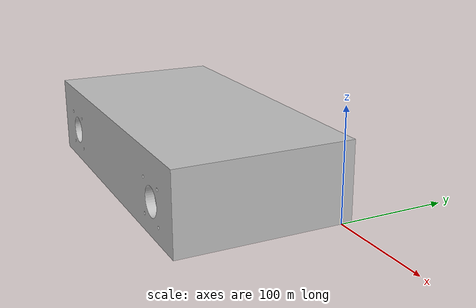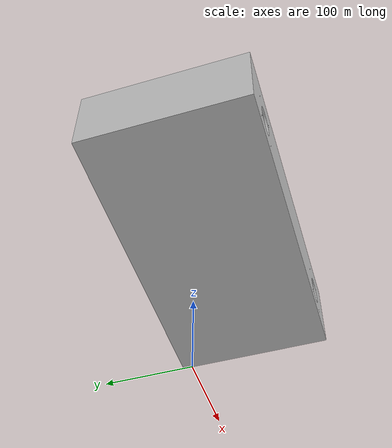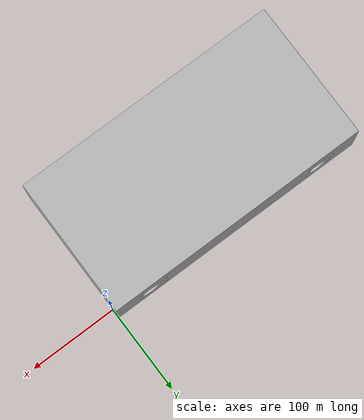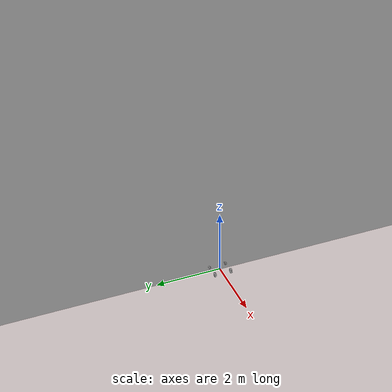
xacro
<?xml version="1.0" encoding="utf-8"?>
<robot name="mecanum" xmlns:xacro="http://ros.org/wiki/xacro">

  <!-- Start GZ or Ignition depending on ROS 2 Version -->
  <xacro:arg name="is_ignition" default="true"/>
  <!-- Load Simulated or Real Hardware Interfaces -->
  <xacro:arg name="is_sim" default="true"/>

  <!-- Include Gazebo Parameters -->
  <xacro:include filename="$(find mecanum_description)/urdf/mecanum_gazebo.xacro" />

  <!-- Include ros2_control Plugins -->
  <xacro:include filename="$(find mecanum_description)/urdf/mecanum_ros2_control.xacro" />
    <xacro:property name="wheel_radius" value="0.075" />
  <xacro:property name="wheel_width" value="0.045" />

  <xacro:property name="PI" value="3.1415926535897931" />
  <link
    name="base_link">
    <inertial>
      <origin
        xyz="-0.0616334610597296 0.00110842254876253 0.396481943080363"
        rpy="0 0 0" />
      <mass
        value="16.9237038037291" />
      <inertia
        ixx="1.08449874890246"
        ixy="-0.00507655317829169"
        ixz="0.0598804895774057"
        iyy="0.933080722024735"
        iyz="-0.000937039801494229"
        izz="0.639733622062268" />
    </inertial>
    <visual>
      <origin
        xyz="0 0 0"
        rpy="0 0 0" />
      <geometry>
        <mesh
          filename="package://mecanum_description/meshes/base_link.STL" />
      </geometry>
      <material
        name="">
        <color
          rgba="0.752941176470588 0.752941176470588 0.752941176470588 1" />
      </material>
    </visual>
    <collision>
      <origin
        xyz="0 0 0"
        rpy="0 0 0" />
      <geometry>
        <mesh
          filename="package://mecanum_description/meshes/base_link.STL" />
      </geometry>
    </collision>
  </link>
  <link
    name="Wheel_fl">
    <inertial>
      <origin
        xyz="-2.41376196257193E-05 0.0309060188745294 2.28944267885028E-05"
        rpy="0 0 0" />
      <mass
        value="0.649312860978082" />
      <inertia
        ixx="0.000306048492548317"
        ixy="1.00770672573299E-07"
        ixz="6.50863660664654E-08"
        iyy="0.000496595115255053"
        iyz="-1.35879172422985E-07"
        izz="0.00030607147244671" />
    </inertial>
    <visual>
      <origin
        xyz="0 0 0"
        rpy="0 0 0" />
      <geometry>
        <mesh
          filename="package://mecanum_description/meshes/Wheel_fl.STL" />
      </geometry>
      <material
        name="">
        <color
          rgba="0.752941176470588 0.752941176470588 0.752941176470588 1" />
      </material>
    </visual>
    <collision>
      <geometry>
        <sphere radius="${wheel_radius}"/>
      </geometry>
    </collision>
  </link>
  <joint
    name="Wheel_fl_joint"
    type="continuous">
    <origin
      xyz="0.21441 0.2814 0.019"
      rpy="0 0 0" />
    <parent
      link="base_link" />
    <child
      link="Wheel_fl" />
    <axis
      xyz="0 1 0" />
  </joint>
  <link
    name="Wheel_fr">
    <inertial>
      <origin
        xyz="3.30178515568491E-05 -0.0310139812068648 4.07482772006584E-06"
        rpy="0 0 0" />
      <mass
        value="0.649311866313009" />
      <inertia
        ixx="0.000305995967646764"
        ixy="-1.68948959184498E-07"
        ixz="-2.37438743392751E-08"
        iyy="0.000496590628121242"
        iyz="8.60971405739951E-09"
        izz="0.00030611932861977" />
    </inertial>
    <visual>
      <origin
        xyz="0 0 0"
        rpy="0 0 0" />
      <geometry>
        <mesh
          filename="package://mecanum_description/meshes/Wheel_fr.STL" />
      </geometry>
      <material
        name="">
        <color
          rgba="0.752941176470588 0.752941176470588 0.752941176470588 1" />
      </material>
    </visual>
    <collision>
      <geometry>
        <sphere radius="${wheel_radius}"/>
      </geometry>
    </collision>
  </link>
  <joint
    name="Wheel_fr_joint"
    type="continuous">
    <origin
      xyz="0.21441 -0.2814 0.019021"
      rpy="0 0 0" />
    <parent
      link="base_link" />
    <child
      link="Wheel_fr" />
    <axis
      xyz="0 1 0" />
  </joint>
  <link
    name="Wheel_rl">
    <inertial>
      <origin
        xyz="3.27355853242395E-05 0.031013981206959 -5.92994961685911E-06"
        rpy="0 0 0" />
      <mass
        value="0.649311866313009" />
      <inertia
        ixx="0.000305999032956135"
        ixy="1.69165640390471E-07"
        ixz="3.05371083078706E-08"
        iyy="0.000496590628121307"
        iyz="-9.29546124693673E-10"
        izz="0.000306116263310587" />
    </inertial>
    <visual>
      <origin
        xyz="0 0 0"
        rpy="0 0 0" />
      <geometry>
        <mesh
          filename="package://mecanum_description/meshes/Wheel_rl.STL" />
      </geometry>
      <material
        name="">
        <color
          rgba="0.752941176470588 0.752941176470588 0.752941176470588 1" />
      </material>
    </visual>
    <collision>
      <geometry>
        <sphere radius="${wheel_radius}"/>
      </geometry>
    </collision>
  </link>
  <joint
    name="Wheel_rl_joint"
    type="continuous">
    <origin
      xyz="-0.21059 0.2814 0.019"
      rpy="0 0 0" />
    <parent
      link="base_link" />
    <child
      link="Wheel_rl" />
    <axis
      xyz="0 1 0" />
  </joint>
  <link
    name="Wheel_rr">
    <inertial>
      <origin
        xyz="-9.36709482246556E-06 -0.0310139811254606 3.19223588298723E-05"
        rpy="0 0 0" />
      <mass
        value="0.649312860978082" />
      <inertia
        ixx="0.00030611084150422"
        ixy="1.88590063239517E-08"
        ixz="4.22091864368747E-08"
        iyy="0.000496595115255078"
        iyz="-1.6811369912309E-07"
        izz="0.000306009123490886" />
    </inertial>
    <visual>
      <origin
        xyz="0 0 0"
        rpy="0 0 0" />
      <geometry>
        <mesh
          filename="package://mecanum_description/meshes/Wheel_rr.STL" />
      </geometry>
      <material
        name="">
        <color
          rgba="0.752941176470588 0.752941176470588 0.752941176470588 1" />
      </material>
    </visual>
    <collision>
      <geometry>
        <sphere radius="${wheel_radius}"/>
      </geometry>
    </collision>
  </link>
  <joint
    name="Wheel_rr_joint"
    type="continuous">
    <origin
      xyz="-0.21059 -0.2814 0.019"
      rpy="0 0 0" />
    <parent
      link="base_link" />
    <child
      link="Wheel_rr" />
    <axis
      xyz="0 1 0" />
  </joint>

</robot>
